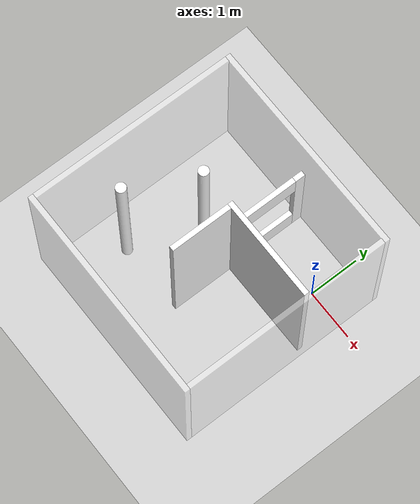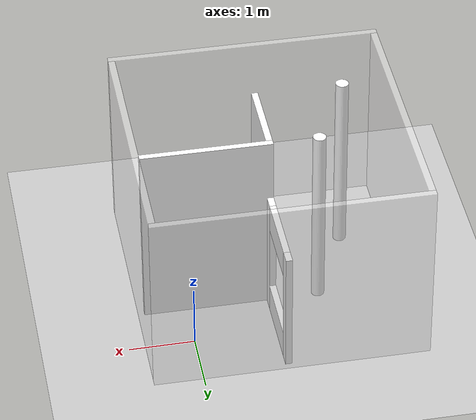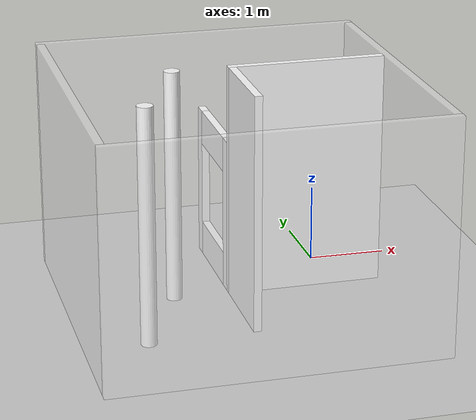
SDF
<sdf version="1.7">
 <world name="default">
  <light name="sun" type="directional">
   <pose>0 0 10 0 -0 0</pose>
   <diffuse>0.8 0.8 0.8 1</diffuse>
   <specular>0.2 0.2 0.2 1</specular>
   <attenuation>
    <range>1000</range>
    <constant>0.9</constant>
    <linear>0.01</linear>
    <quadratic>0.001</quadratic>
   </attenuation>
   <direction>-0.5 0.1 -0.9</direction>
   <spot><inner_angle>0</inner_angle><outer_angle>0</outer_angle><falloff>0</falloff></spot>
  </light>
  <model name="ground_plane">
   <static>1</static>
   <link name="link">
    <collision name="collision">
     <geometry><plane><normal>0 0 1</normal><size>100 100</size></plane></geometry>
     <surface>
      <contact><collide_bitmask>65535</collide_bitmask></contact>
      <friction><ode><mu>100</mu><mu2>50</mu2></ode></friction>
     </surface>
    </collision>
    <visual name="visual">
     <cast_shadows>0</cast_shadows>
     <geometry><plane><normal>0 0 1</normal><size>100 100</size></plane></geometry>
     <material>
      <script><uri>file://media/materials/scripts/gazebo.material</uri><name>Gazebo/Grey</name></script>
     </material>
    </visual>
   </link>
  </model>
  <model name="wall_south">
   <static>1</static>
   <pose>-1.35 -3.3 1.5 0 0 0</pose>
   <link name="link">
    <collision name="collision"><geometry><box><size>4.2 0.1 3.0</size></box></geometry></collision>
    <visual name="visual">
     <geometry><box><size>4.2 0.1 3.0</size></box></geometry>
     <material><ambient>1 1 1 0.4</ambient><diffuse>1 1 1 0.4</diffuse><specular>1 1 1 0.4</specular></material>
    </visual>
   </link>
  </model>
  <model name="wall_north">
   <static>1</static>
   <pose>-1.35 0.8 1.5 0 0 0</pose>
   <link name="link">
    <collision name="collision"><geometry><box><size>4.2 0.1 3.0</size></box></geometry></collision>
    <visual name="visual">
     <geometry><box><size>4.2 0.1 3.0</size></box></geometry>
     <material><ambient>1 1 1 0.4</ambient><diffuse>1 1 1 0.4</diffuse><specular>1 1 1 0.4</specular></material>
    </visual>
   </link>
  </model>
  <model name="wall_west">
   <static>1</static>
   <pose>-3.4 -1.25 1.5 0 0 0</pose>
   <link name="link">
    <collision name="collision"><geometry><box><size>0.1 4.0 3.0</size></box></geometry></collision>
    <visual name="visual">
     <geometry><box><size>0.1 4.0 3.0</size></box></geometry>
     <material><ambient>1 1 1 0.4</ambient><diffuse>1 1 1 0.4</diffuse><specular>1 1 1 0.4</specular></material>
    </visual>
   </link>
  </model>
  <model name="wall_east">
   <static>1</static>
   <pose>0.7 -1.25 1.5 0 0 0</pose>
   <link name="link">
    <collision name="collision"><geometry><box><size>0.1 4.0 3.0</size></box></geometry></collision>
    <visual name="visual">
     <geometry><box><size>0.1 4.0 3.0</size></box></geometry>
     <material><ambient>1 1 1 0.4</ambient><diffuse>1 1 1 0.4</diffuse><specular>1 1 1 0.4</specular></material>
    </visual>
   </link>
  </model>
  <model name="static_obs1">
   <static>1</static>
   <pose>-0.35 -0.8 1.5 0 0 0</pose>
   <link name="link">
    <collision name="collision"><geometry><box><size>2.0 0.1 3.0</size></box></geometry></collision>
    <visual name="visual">
     <geometry><box><size>2.0 0.1 3.0</size></box></geometry>
     <material><ambient>1 1 1 1</ambient><diffuse>1 1 1 1</diffuse><specular>1 1 1 1</specular></material>
    </visual>
   </link>
  </model>
  <model name="net_obs1">
   <static>1</static>
   <pose>-1.3 -1.45 1.5 0 0 0</pose>
   <link name="link">
    <collision name="collision"><geometry><box><size>0.1 1.2 3.0</size></box></geometry></collision>
    <visual name="visual">
     <geometry><box><size>0.1 1.2 3.0</size></box></geometry>
     <material><ambient>1 1 1 1</ambient><diffuse>1 1 1 1</diffuse><specular>1 1 1 1</specular></material>
    </visual>
   </link>
  </model>
  <model name="door_down">
   <static>1</static>
   <pose>-1.3 0.0 0.225 0 0 0</pose>
   <link name="link">
    <collision name="collision"><geometry><box><size>0.1 1.1 0.45</size></box></geometry></collision>
    <visual name="visual">
     <geometry><box><size>0.1 1.1 0.45</size></box></geometry>
     <material><ambient>1 1 1 1</ambient><diffuse>1 1 1 1</diffuse><specular>1 1 1 1</specular></material>
    </visual>
   </link>
  </model>
  <model name="door_up">
   <static>1</static>
   <pose>-1.3 0.0 1.775 0 0 0</pose>
   <link name="link">
    <collision name="collision"><geometry><box><size>0.1 1.1 0.45</size></box></geometry></collision>
    <visual name="visual">
     <geometry><box><size>0.1 1.1 0.45</size></box></geometry>
     <material><ambient>1 1 1 1</ambient><diffuse>1 1 1 1</diffuse><specular>1 1 1 1</specular></material>
    </visual>
   </link>
  </model>
  <model name="door_left">
   <static>1</static>
   <pose>-1.3 0.65 1.0 0 0 0</pose>
   <link name="link">
    <collision name="collision"><geometry><box><size>0.1 0.2 2.0</size></box></geometry></collision>
    <visual name="visual">
     <geometry><box><size>0.1 0.2 2.0</size></box></geometry>
     <material><ambient>1 1 1 1</ambient><diffuse>1 1 1 1</diffuse><specular>1 1 1 1</specular></material>
    </visual>
   </link>
  </model>
  <model name="door_right">
   <static>1</static>
   <pose>-1.3 -0.65 1.0 0 0 0</pose>
   <link name="link">
    <collision name="collision"><geometry><box><size>0.1 0.2 2.0</size></box></geometry></collision>
    <visual name="visual">
     <geometry><box><size>0.1 0.2 2.0</size></box></geometry>
     <material><ambient>1 1 1 1</ambient><diffuse>1 1 1 1</diffuse><specular>1 1 1 1</specular></material>
    </visual>
   </link>
  </model>
  <model name="obs_1">
   <static>1</static>
   <pose>-2.05 -0.8 1.5 0 0 0</pose>
   <link name="link">
    <collision name="collision">
     <geometry><cylinder><radius>0.1</radius><length>3.0</length></cylinder></geometry>
    </collision>
    <visual name="visual">
     <geometry><cylinder><radius>0.1</radius><length>3.0</length></cylinder></geometry>
     <material><ambient>1 1 1 1</ambient><diffuse>1 1 1 1</diffuse><specular>1 1 1 1</specular></material>
    </visual>
   </link>
  </model>
  <model name="obs_4">
   <static>1</static>
   <pose>-2.65 -2.05 1.5 0 0 0</pose>
   <link name="link">
    <collision name="collision">
     <geometry><cylinder><radius>0.1</radius><length>3.0</length></cylinder></geometry>
    </collision>
    <visual name="visual">
     <geometry><cylinder><radius>0.1</radius><length>3.0</length></cylinder></geometry>
     <material><ambient>1 1 1 1</ambient><diffuse>1 1 1 1</diffuse><specular>1 1 1 1</specular></material>
    </visual>
   </link>
  </model>
  <gravity>0 0 -9.8</gravity>
  <magnetic_field>6e-06 2.3e-05 -4.2e-05</magnetic_field>
  <atmosphere type="adiabatic"/>
  <physics type="ode">
   <max_step_size>0.001</max_step_size>
   <real_time_factor>1</real_time_factor>
   <real_time_update_rate>1000</real_time_update_rate>
  </physics>
  <scene><ambient>0.4 0.4 0.4 1</ambient><background>0.7 0.7 0.7 1</background><shadows>1</shadows></scene>
  <spherical_coordinates>
   <surface_model>EARTH_WGS84</surface_model>
   <latitude_deg>0</latitude_deg>
   <longitude_deg>0</longitude_deg>
   <elevation>0</elevation>
   <heading_deg>0</heading_deg>
  </spherical_coordinates>
 </world>
</sdf>
